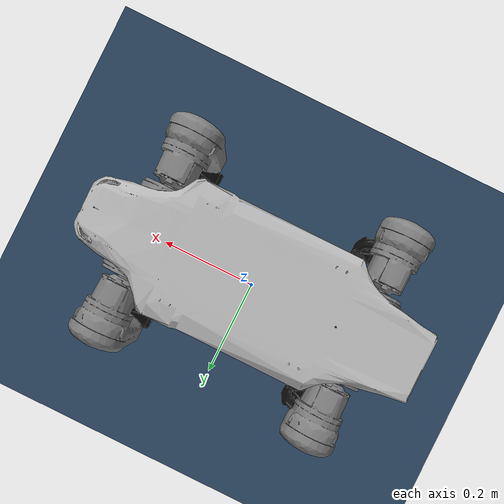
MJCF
<mujoco model="lite3 scene">
  <include file="robot.xml"/>

  <statistic center="0 0 0.1" extent="0.8"/>

  <visual>
    <headlight diffuse="0.6 0.6 0.6" ambient="0.3 0.3 0.3" specular="0 0 0"/>
    <rgba haze="0.15 0.25 0.35 1"/>
    <global azimuth="120" elevation="-20"/>
  </visual>

  <asset>
    <texture type="skybox" builtin="gradient" rgb1="0.3 0.5 0.7" rgb2="0 0 0" width="512" height="3072"/>
    <texture type="2d" name="groundplane" builtin="checker" mark="edge" rgb1="0.2 0.3 0.4" rgb2="0.1 0.2 0.3"
      markrgb="0.8 0.8 0.8" width="300" height="300"/>
    <material name="groundplane" texture="groundplane" texuniform="true" texrepeat="5 5" reflectance="0.2"/>
  </asset>

  <worldbody>
    <light pos="0 0 1.5" dir="0 0 -1" directional="true"/>
    <geom name="floor" size="0 0 0.05" type="plane" material="groundplane"/>
  </worldbody>
</mujoco>

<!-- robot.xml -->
<mujoco model="lite3">
  <compiler angle="radian" meshdir="meshes/"/>

  <default>
    <default class="lite3">
      <geom friction="0.4" margin="0.001" condim="1"/>
      <joint axis="0 -1 0" damping="0.1" armature="0.01" frictionloss="0.2"/>
      <motor ctrlrange="-24 24"/>
      <default class="abduction">
        <joint axis="-1 0 0" range="-0.42 0.42"/>
      </default>
      <default class="hip">
        <joint range="-2.67 0.314"/>
      </default>
      <default class="knee">
        <joint range="0.6 2.7"/>
        <motor ctrlrange="-36 36"/>
      </default>
      <default class="visual">
        <geom type="mesh" contype="0" conaffinity="0" group="2" material="dark"/>
      </default>
      <default class="collision">
        <geom group="3"/>
        <default class="foot">
          <geom size="0.022" pos="-0.002 0 -0.213" priority="1" condim="6"
                friction="0.4 0.02 0.01"/>
        </default>
      </default>
    </default>
  </default>

  <asset>
    <material name="metal" rgba=".7 .7 .7 1" shininess="0.25" specular="0"/>
    <material name="black" rgba=".1 .1 .1 1" shininess="0.25"/>
    <material name="dark" rgba="0.5 0.5 0.5 1" shininess="0.1"/>
    <material name="transparent" rgba="1 1 1 0.01"/>

    <mesh name="torso" file="lite3.stl"/>
    <mesh name="fl_hip" file="fl_hip.stl"/>
    <mesh name="fr_hip" file="fr_hip.stl"/>
    <mesh name="hl_hip" file="hl_hip.stl"/>
    <mesh name="hr_hip" file="hr_hip.stl"/>
    <mesh name="l_thigh" file="l_thigh.stl"/>
    <mesh name="r_thigh" file="r_thigh.stl"/>
    <mesh name="shank" file="shank.stl"/>
  </asset>

  <worldbody>
    <body name="base_link" pos="0 0 0.43" childclass="lite3">
      <inertial pos="0.004098 -0.000663 -0.002069"
                mass="4.130"
                diaginertia="0.016982120 0.030466501 0.042609956"/>
      <freejoint/>
      <geom size="0.117 0.092 0.055" type="box" class="collision"/>
      <geom size="0.0005 0.0005 0.0005" type="box"/>
      <geom type="mesh" class="visual" material="metal" mesh="torso"
            quat="0 0 0 1"/>
      <site name="imu" pos="0 0 0"/>
      <body name="FL_HIP" pos="0.1745 0.062 0">
        <inertial pos="-0.0047 -0.0091 -0.0018" quat="0.684923 0.185524 0.176437 0.682152" mass="0.428"
                  diaginertia="0.000240261 0.000152578 0.000123161"/>
        <joint name="FL_HipX" class="abduction"/>
        <geom type="mesh" class="visual" material="dark" mesh="fl_hip" pos="-0.05 0 0"/>
        <body name="FL_THIGH" pos="0 0.0985 0">
          <inertial pos="-0.00523 -0.0216 -0.0273" quat="0.698912 0.0529083 0.0519832 0.711351" mass="0.61"
                    diaginertia="0.00116004 0.00101671 0.000251247"/>
          <joint name="FL_HipY" class="hip"/>
          <geom size="0.01 0.01 0.08" pos="0 0 -0.08" type="box" class="collision"/>
          <geom type="mesh" class="visual" material="dark" mesh="l_thigh"/>

          <body name="FL_SHANK" pos="0 0 -0.2">
            <inertial pos="0.00585 -8.732e-07 -0.12" quat="0.706853 -0.00383613 -0.00383974 0.70734" mass="0.115"
                      diaginertia="0.000686 0.000668075 3.1475e-05"/>
            <joint name="FL_Knee" class="knee"/>
            <geom size="0.01 0.01 0.1" pos="0 0 -0.09" type="box" class="collision"/>
            <geom size="0.023" pos="0 0 -0.21" class="collision"/>
            <geom class="visual" material="black" type="mesh" mesh="shank" quat="0 0.7578426 0 0.6524375"/>
            <site name="FL_touch" pos="0 0 -0.21" size="0.026" material="transparent"/>
          </body>
        </body>
      </body>
      <body name="FR_HIP" pos="0.1745 -0.062 0">
        <inertial pos="-0.0047 0.0091 -0.0018" quat="0.682155 0.176432 0.185517 0.684923" mass="0.428"
                  diaginertia="0.000240261 0.000152577 0.000123162"/>
        <joint name="FR_HipX" class="abduction"/>
        <geom type="mesh" class="visual" material="dark" mesh="fr_hip" pos="-0.05 0 0"/>
        <body name="FR_THIGH" pos="0 -0.0985 0">
          <inertial pos="-0.00523 0.0216 -0.0273" quat="0.711351 0.0519832 0.0529083 0.698912" mass="0.61"
                    diaginertia="0.00116004 0.00101671 0.000251247"/>
          <joint name="FR_HipY" class="hip"/>
          <geom size="0.01 0.01 0.08" pos="0 0 -0.08" type="box" class="collision"/>
          <geom type="mesh" class="visual" material="dark" mesh="r_thigh"/>
          <body name="FR_SHANK" pos="0 0 -0.2">
            <inertial pos="0.00585 -8.732e-07 -0.12" quat="0.706853 -0.00383613 -0.00383974 0.70734" mass="0.115"
                      diaginertia="0.000686 0.000668075 3.1475e-05"/>
            <joint name="FR_Knee" class="knee"/>
            <geom size="0.01 0.01 0.1" pos="0 0 -0.09" type="box" class="collision"/>
            <geom size="0.023" pos="0 0 -0.21" class="collision"/>
            <geom class="visual" material="black" type="mesh" mesh="shank" quat="0 0.7578426 0 0.6524375"/>
            <site name="FR_touch" pos="0 0 -0.21" size="0.026" material="transparent"/>
          </body>
        </body>
      </body>
      <body name="HL_HIP" pos="-0.1745 0.062 0">
        <inertial pos="0.0047 -0.0091 -0.0018" quat="0.682154 -0.176431 -0.185518 0.684924" mass="0.428"
                  diaginertia="0.000240261 0.000152577 0.000123162"/>
        <joint name="HL_HipX" class="abduction"/>
        <geom type="mesh" class="visual" material="dark" mesh="hl_hip" pos="0.05 0 0"/>
        <body name="HL_THIGH" pos="0 0.0985 0">
          <inertial pos="-0.00523 -0.0216 -0.0273" quat="0.698912 0.0529083 0.0519832 0.711351" mass="0.61"
                    diaginertia="0.00116004 0.00101671 0.000251247"/>
          <joint name="HL_HipY" class="hip"/>
          <geom size="0.01 0.01 0.08" pos="0 0 -0.08" type="box" class="collision"/>
          <geom type="mesh" class="visual" material="dark" mesh="l_thigh"/>
          <body name="HL_SHANK" pos="0 0 -0.2">
            <inertial pos="0.00585 -8.732e-07 -0.12" quat="0.706853 -0.00383613 -0.00383974 0.70734" mass="0.115"
                      diaginertia="0.000686 0.000668075 3.1475e-05"/>
            <joint name="HL_Knee" class="knee"/>
            <geom size="0.01 0.01 0.1" pos="0 0 -0.09" type="box" class="collision"/>
            <geom size="0.023" pos="0 0 -0.21" class="collision"/>
            <geom class="visual" material="black" type="mesh" mesh="shank" quat="0 0.7578426 0 0.6524375"/>
            <site name="HL_touch" pos="0 0 -0.21" size="0.026" material="transparent"/>
          </body>
        </body>
      </body>
      <body name="HR_HIP" pos="-0.1745 -0.062 0">
        <inertial pos="0.0047 0.0091 -0.0018" quat="0.684923 -0.185517 -0.176432 0.682155" mass="0.428"
                  diaginertia="0.000240261 0.000152577 0.000123162"/>
        <joint name="HR_HipX" class="abduction"/>
        <geom type="mesh" class="visual" material="dark" mesh="hr_hip" pos="0.05 0 0"/>
        <body name="HR_THIGH" pos="0 -0.0985 0">
          <inertial pos="-0.00523 0.0216 -0.0273" quat="0.711351 0.0519832 0.0529083 0.698912" mass="0.61"
                    diaginertia="0.00116004 0.00101671 0.000251247"/>
          <joint name="HR_HipY" class="hip"/>
          <geom size="0.01 0.01 0.08" pos="0 0 -0.08" type="box" class="collision"/>
          <geom type="mesh" class="visual" material="dark" mesh="r_thigh"/>
          <body name="HR_SHANK" pos="0 0 -0.2">
            <inertial pos="0.00585 -8.732e-07 -0.12" quat="0.706853 -0.00383613 -0.00383974 0.70734" mass="0.115"
                      diaginertia="0.000686 0.000668075 3.1475e-05"/>
            <joint name="HR_Knee" class="knee"/>
            <geom size="0.01 0.01 0.1" pos="0 0 -0.09" type="box" class="collision"/>
            <geom size="0.023" pos="0 0 -0.21" class="collision"/>
            <geom class="visual" material="black" type="mesh" mesh="shank" quat="0 0.7578426 0 0.6524375"/>
            <site name="HR_touch" pos="0 0 -0.21" size="0.026" material="transparent"/>
          </body>
        </body>
      </body>
    </body>
  </worldbody>

  <actuator>
    <motor class="abduction" name="FR_HipX" joint="FR_HipX"/>
    <motor class="hip" name="FR_HipY" joint="FR_HipY"/>
    <motor class="knee" name="FR_Knee" joint="FR_Knee"/>
    <motor class="abduction" name="FL_HipX" joint="FL_HipX"/>
    <motor class="hip" name="FL_HipY" joint="FL_HipY"/>
    <motor class="knee" name="FL_Knee" joint="FL_Knee"/>
    <motor class="abduction" name="HR_HipX" joint="HR_HipX"/>
    <motor class="hip" name="HR_HipY" joint="HR_HipY"/>
    <motor class="knee" name="HR_Knee" joint="HR_Knee"/>
    <motor class="abduction" name="HL_HipX" joint="HL_HipX"/>
    <motor class="hip" name="HL_HipY" joint="HL_HipY"/>
    <motor class="knee" name="HL_Knee" joint="HL_Knee"/>
  </actuator>

  <sensor>
    <jointpos name="FR_HipX_pos" joint="FR_HipX"/>
    <jointpos name="FR_HipY_pos" joint="FR_HipY"/>
    <jointpos name="FR_Knee_pos" joint="FR_Knee"/>
    <jointpos name="FL_HipX_pos" joint="FL_HipX"/>
    <jointpos name="FL_HipY_pos" joint="FL_HipY"/>
    <jointpos name="FL_Knee_pos" joint="FL_Knee"/>
    <jointpos name="HR_HipX_pos" joint="HR_HipX"/>
    <jointpos name="HR_HipY_pos" joint="HR_HipY"/>
    <jointpos name="HR_Knee_pos" joint="HR_Knee"/>
    <jointpos name="HL_HipX_pos" joint="HL_HipX"/>
    <jointpos name="HL_HipY_pos" joint="HL_HipY"/>
    <jointpos name="HL_Knee_pos" joint="HL_Knee"/>

    <jointvel name="FR_HipX_vel" joint="FR_HipX"/>
    <jointvel name="FR_HipY_vel" joint="FR_HipY"/>
    <jointvel name="FR_Knee_vel" joint="FR_Knee"/>
    <jointvel name="FL_HipX_vel" joint="FL_HipX"/>
    <jointvel name="FL_HipY_vel" joint="FL_HipY"/>
    <jointvel name="FL_Knee_vel" joint="FL_Knee"/>
    <jointvel name="HR_HipX_vel" joint="HR_HipX"/>
    <jointvel name="HR_HipY_vel" joint="HR_HipY"/>
    <jointvel name="HR_Knee_vel" joint="HR_Knee"/>
    <jointvel name="HL_HipX_vel" joint="HL_HipX"/>
    <jointvel name="HL_HipY_vel" joint="HL_HipY"/>
    <jointvel name="HL_Knee_vel" joint="HL_Knee"/>

    <jointactuatorfrc name="FR_HipX_torque" joint="FR_HipX" noise="0.01"/>
    <jointactuatorfrc name="FR_HipY_torque" joint="FR_HipY" noise="0.01"/>
    <jointactuatorfrc name="FR_Knee_torque" joint="FR_Knee" noise="0.01"/>
    <jointactuatorfrc name="FL_HipX_torque" joint="FL_HipX" noise="0.01"/>
    <jointactuatorfrc name="FL_HipY_torque" joint="FL_HipY" noise="0.01"/>
    <jointactuatorfrc name="FL_Knee_torque" joint="FL_Knee" noise="0.01"/>
    <jointactuatorfrc name="HR_HipX_torque" joint="HR_HipX" noise="0.01"/>
    <jointactuatorfrc name="HR_HipY_torque" joint="HR_HipY" noise="0.01"/>
    <jointactuatorfrc name="HR_Knee_torque" joint="HR_Knee" noise="0.01"/>
    <jointactuatorfrc name="HL_HipX_torque" joint="HL_HipX" noise="0.01"/>
    <jointactuatorfrc name="HL_HipY_torque" joint="HL_HipY" noise="0.01"/>
    <jointactuatorfrc name="HL_Knee_torque" joint="HL_Knee" noise="0.01"/>

    <framequat name="imu_quat" objtype="site" objname="imu"/>
    <gyro name="imu_gyro" site="imu"/>
    <accelerometer name="imu_acc" site="imu"/>

    <framepos name="frame_pos" objtype="site" objname="imu"/>
    <framelinvel name="frame_vel" objtype="site" objname="imu"/>

    <touch name="FR_touch" site="FR_touch"/>
    <touch name="FL_touch" site="FL_touch"/>
    <touch name="HR_touch" site="HR_touch"/>
    <touch name="HL_touch" site="HL_touch"/>
  </sensor>

  <keyframe>
    <key name="home" qpos="0 0 0.1 1 0 0 0 -0.32 -2.9 2.5 0.32 -2.9 2.5 -0.32 -2.9 2.5 0.32 -2.9 2.5"
         ctrl="0 0 0 0 0 0 0 0 0 0 0 0"/>
  </keyframe>
</mujoco>
